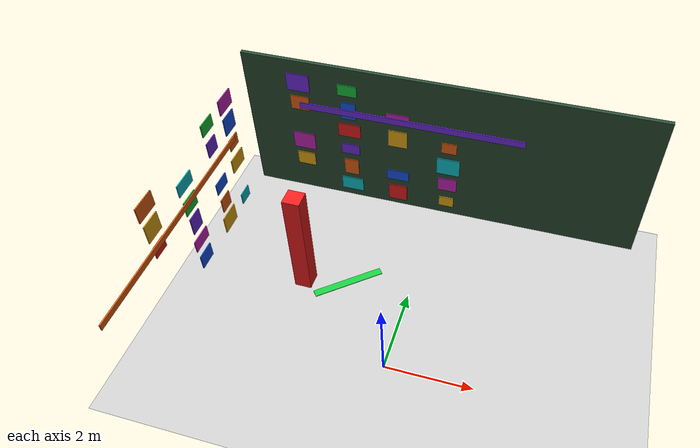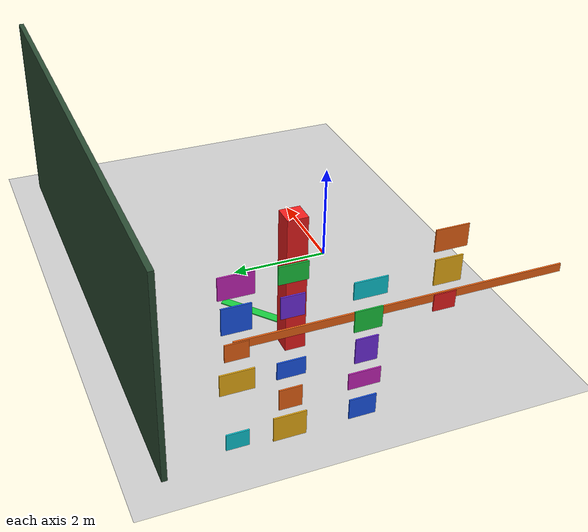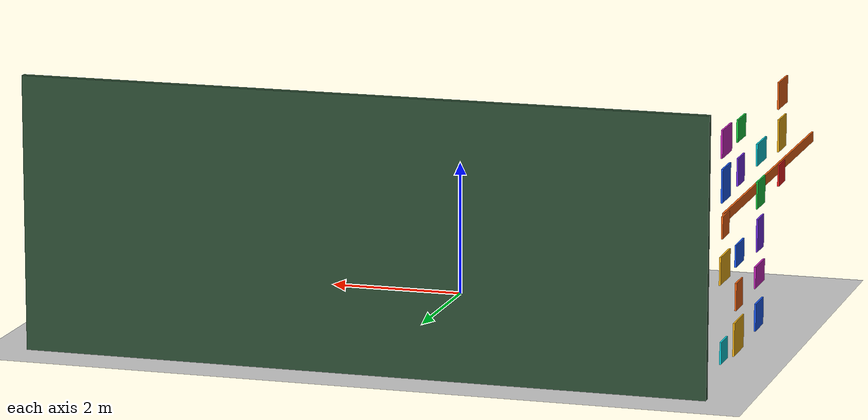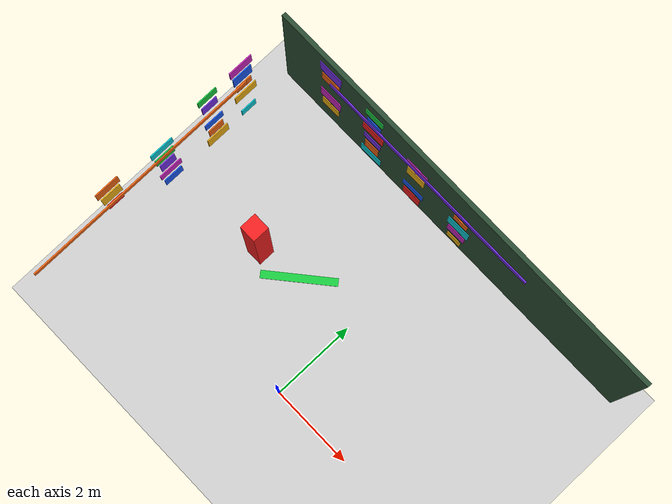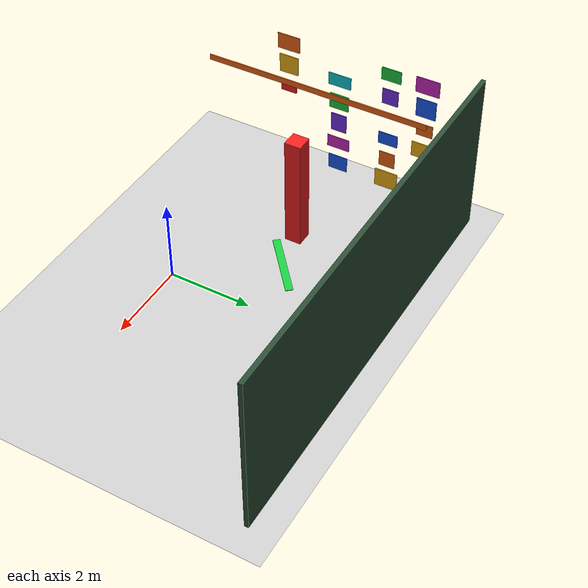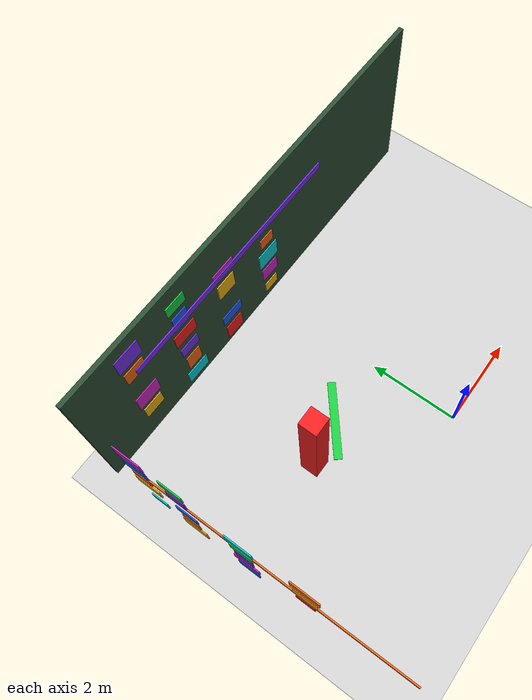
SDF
<sdf version="1.10">
 <world name="slam_room_office">
  <model name="ground_plane">
   <static>true</static>
   <link name="link">
    <collision name="collision">
     <geometry><plane><normal>0 0 1</normal><size>1 1</size></plane></geometry>
    </collision>
    <visual name="visual">
     <geometry><plane><normal>0 0 1</normal><size>500 500</size></plane></geometry>
     <material>
      <ambient>0.800000012 0.800000012 0.800000012 1</ambient>
      <diffuse>0.800000012 0.800000012 0.800000012 1</diffuse>
      <specular>0.800000012 0.800000012 0.800000012 1</specular>
     </material>
    </visual>
    <inertial>
     <mass>1</mass>
     <inertia><ixx>1</ixx><ixy>0</ixy><ixz>0</ixz><iyy>1</iyy><iyz>0</iyz><izz>1</izz></inertia>
    </inertial>
   </link>
  </model>
  <model name="slam_room_structure">
   <static>true</static>
   <link name="wall_y_pos">
    <pose>0 5 2 0 0 0</pose>
    <collision name="collision"><geometry><box><size>10 0.10000000000000001 4</size></box></geometry></collision>
    <visual name="visual">
     <geometry><box><size>10 0.10000000000000001 4</size></box></geometry>
     <material>
      <ambient>0.170000002 0.300000012 0.200000003 1</ambient>
      <diffuse>0.170000002 0.300000012 0.200000003 1</diffuse>
     </material>
    </visual>
    <inertial>
     <mass>1</mass>
     <inertia><ixx>1</ixx><ixy>0</ixy><ixz>0</ixz><iyy>1</iyy><iyz>0</iyz><izz>1</izz></inertia>
    </inertial>
   </link>
   <link name="xwall_panel_39">
    <pose>-4.9400000000000004 1.55 0.40000000000000002 0 0 0</pose>
    <visual name="visual">
     <geometry><box><size>0.025000000000000001 0.48999999999999999 0.40000000000000002</size></box></geometry>
     <material>
      <ambient>0.100000001 0.349999994 0.949999988 1</ambient>
      <diffuse>0.100000001 0.349999994 0.949999988 1</diffuse>
     </material>
    </visual>
    <inertial>
     <mass>1</mass>
     <inertia><ixx>1</ixx><ixy>0</ixy><ixz>0</ixz><iyy>1</iyy><iyz>0</iyz><izz>1</izz></inertia>
    </inertial>
   </link>
   <link name="xwall_panel_40">
    <pose>-4.9400000000000004 2.8500000000000001 0.40000000000000002 0 0 0</pose>
    <visual name="visual">
     <geometry><box><size>0.025000000000000001 0.57999999999999996 0.47999999999999998</size></box></geometry>
     <material>
      <ambient>0.949999988 0.699999988 0.0799999982 1</ambient>
      <diffuse>0.949999988 0.699999988 0.0799999982 1</diffuse>
     </material>
    </visual>
    <inertial>
     <mass>1</mass>
     <inertia><ixx>1</ixx><ixy>0</ixy><ixz>0</ixz><iyy>1</iyy><iyz>0</iyz><izz>1</izz></inertia>
    </inertial>
   </link>
   <link name="xwall_panel_41">
    <pose>-4.9400000000000004 3.75 0.40000000000000002 0 0 0</pose>
    <visual name="visual">
     <geometry><box><size>0.025000000000000001 0.40000000000000002 0.32000000000000001</size></box></geometry>
     <material>
      <ambient>0.0500000007 0.800000012 0.850000024 1</ambient>
      <diffuse>0.0500000007 0.800000012 0.850000024 1</diffuse>
     </material>
    </visual>
    <inertial>
     <mass>1</mass>
     <inertia><ixx>1</ixx><ixy>0</ixy><ixz>0</ixz><iyy>1</iyy><iyz>0</iyz><izz>1</izz></inertia>
    </inertial>
   </link>
   <link name="xwall_panel_46">
    <pose>-4.9400000000000004 1.55 1 0 0 0</pose>
    <visual name="visual">
     <geometry><box><size>0.025000000000000001 0.57999999999999996 0.32000000000000001</size></box></geometry>
     <material>
      <ambient>0.800000012 0.150000006 0.75 1</ambient>
      <diffuse>0.800000012 0.150000006 0.75 1</diffuse>
     </material>
    </visual>
    <inertial>
     <mass>1</mass>
     <inertia><ixx>1</ixx><ixy>0</ixy><ixz>0</ixz><iyy>1</iyy><iyz>0</iyz><izz>1</izz></inertia>
    </inertial>
   </link>
   <link name="xwall_panel_47">
    <pose>-4.9400000000000004 2.8500000000000001 1 0 0 0</pose>
    <visual name="visual">
     <geometry><box><size>0.025000000000000001 0.40000000000000002 0.40000000000000002</size></box></geometry>
     <material>
      <ambient>0.949999988 0.400000006 0.0799999982 1</ambient>
      <diffuse>0.949999988 0.400000006 0.0799999982 1</diffuse>
     </material>
    </visual>
    <inertial>
     <mass>1</mass>
     <inertia><ixx>1</ixx><ixy>0</ixy><ixz>0</ixz><iyy>1</iyy><iyz>0</iyz><izz>1</izz></inertia>
    </inertial>
   </link>
   <link name="xwall_panel_51">
    <pose>-4.9400000000000004 1.55 1.6000000000000001 0 0 0</pose>
    <visual name="visual">
     <geometry><box><size>0.025000000000000001 0.40000000000000002 0.47999999999999998</size></box></geometry>
     <material>
      <ambient>0.449999988 0.180000007 0.899999976 1</ambient>
      <diffuse>0.449999988 0.180000007 0.899999976 1</diffuse>
     </material>
    </visual>
    <inertial>
     <mass>1</mass>
     <inertia><ixx>1</ixx><ixy>0</ixy><ixz>0</ixz><iyy>1</iyy><iyz>0</iyz><izz>1</izz></inertia>
    </inertial>
   </link>
   <link name="xwall_panel_52">
    <pose>-4.9400000000000004 2.8500000000000001 1.6000000000000001 0 0 0</pose>
    <visual name="visual">
     <geometry><box><size>0.025000000000000001 0.48999999999999999 0.32000000000000001</size></box></geometry>
     <material>
      <ambient>0.100000001 0.349999994 0.949999988 1</ambient>
      <diffuse>0.100000001 0.349999994 0.949999988 1</diffuse>
     </material>
    </visual>
    <inertial>
     <mass>1</mass>
     <inertia><ixx>1</ixx><ixy>0</ixy><ixz>0</ixz><iyy>1</iyy><iyz>0</iyz><izz>1</izz></inertia>
    </inertial>
   </link>
   <link name="xwall_panel_53">
    <pose>-4.9400000000000004 3.75 1.6000000000000001 0 0 0</pose>
    <visual name="visual">
     <geometry><box><size>0.025000000000000001 0.57999999999999996 0.40000000000000002</size></box></geometry>
     <material>
      <ambient>0.949999988 0.699999988 0.0799999982 1</ambient>
      <diffuse>0.949999988 0.699999988 0.0799999982 1</diffuse>
     </material>
    </visual>
    <inertial>
     <mass>1</mass>
     <inertia><ixx>1</ixx><ixy>0</ixy><ixz>0</ixz><iyy>1</iyy><iyz>0</iyz><izz>1</izz></inertia>
    </inertial>
   </link>
   <link name="xwall_panel_57">
    <pose>-4.9400000000000004 0.20000000000000001 2.2000000000000002 0 0 0</pose>
    <visual name="visual">
     <geometry><box><size>0.025000000000000001 0.40000000000000002 0.32000000000000001</size></box></geometry>
     <material>
      <ambient>0.949999988 0.119999997 0.119999997 1</ambient>
      <diffuse>0.949999988 0.119999997 0.119999997 1</diffuse>
     </material>
    </visual>
    <inertial>
     <mass>1</mass>
     <inertia><ixx>1</ixx><ixy>0</ixy><ixz>0</ixz><iyy>1</iyy><iyz>0</iyz><izz>1</izz></inertia>
    </inertial>
   </link>
   <link name="xwall_panel_58">
    <pose>-4.9400000000000004 1.55 2.2000000000000002 0 0 0</pose>
    <visual name="visual">
     <geometry><box><size>0.025000000000000001 0.48999999999999999 0.40000000000000002</size></box></geometry>
     <material>
      <ambient>0.100000001 0.800000012 0.25 1</ambient>
      <diffuse>0.100000001 0.800000012 0.25 1</diffuse>
     </material>
    </visual>
    <inertial>
     <mass>1</mass>
     <inertia><ixx>1</ixx><ixy>0</ixy><ixz>0</ixz><iyy>1</iyy><iyz>0</iyz><izz>1</izz></inertia>
    </inertial>
   </link>
   <link name="xwall_panel_59">
    <pose>-4.9400000000000004 3.75 2.2000000000000002 0 0 0</pose>
    <visual name="visual">
     <geometry><box><size>0.025000000000000001 0.40000000000000002 0.32000000000000001</size></box></geometry>
     <material>
      <ambient>0.949999988 0.400000006 0.0799999982 1</ambient>
      <diffuse>0.949999988 0.400000006 0.0799999982 1</diffuse>
     </material>
    </visual>
    <inertial>
     <mass>1</mass>
     <inertia><ixx>1</ixx><ixy>0</ixy><ixz>0</ixz><iyy>1</iyy><iyz>0</iyz><izz>1</izz></inertia>
    </inertial>
   </link>
   <link name="xwall_panel_62">
    <pose>-4.9400000000000004 0.20000000000000001 2.7999999999999998 0 0 0</pose>
    <visual name="visual">
     <geometry><box><size>0.025000000000000001 0.48999999999999999 0.47999999999999998</size></box></geometry>
     <material>
      <ambient>0.949999988 0.699999988 0.0799999982 1</ambient>
      <diffuse>0.949999988 0.699999988 0.0799999982 1</diffuse>
     </material>
    </visual>
    <inertial>
     <mass>1</mass>
     <inertia><ixx>1</ixx><ixy>0</ixy><ixz>0</ixz><iyy>1</iyy><iyz>0</iyz><izz>1</izz></inertia>
    </inertial>
   </link>
   <link name="xwall_panel_63">
    <pose>-4.9400000000000004 1.55 2.7999999999999998 0 0 0</pose>
    <visual name="visual">
     <geometry><box><size>0.025000000000000001 0.57999999999999996 0.32000000000000001</size></box></geometry>
     <material>
      <ambient>0.0500000007 0.800000012 0.850000024 1</ambient>
      <diffuse>0.0500000007 0.800000012 0.850000024 1</diffuse>
     </material>
    </visual>
    <inertial>
     <mass>1</mass>
     <inertia><ixx>1</ixx><ixy>0</ixy><ixz>0</ixz><iyy>1</iyy><iyz>0</iyz><izz>1</izz></inertia>
    </inertial>
   </link>
   <link name="xwall_panel_64">
    <pose>-4.9400000000000004 2.8500000000000001 2.7999999999999998 0 0 0</pose>
    <visual name="visual">
     <geometry><box><size>0.025000000000000001 0.40000000000000002 0.40000000000000002</size></box></geometry>
     <material>
      <ambient>0.449999988 0.180000007 0.899999976 1</ambient>
      <diffuse>0.449999988 0.180000007 0.899999976 1</diffuse>
     </material>
    </visual>
    <inertial>
     <mass>1</mass>
     <inertia><ixx>1</ixx><ixy>0</ixy><ixz>0</ixz><iyy>1</iyy><iyz>0</iyz><izz>1</izz></inertia>
    </inertial>
   </link>
   <link name="xwall_panel_65">
    <pose>-4.9400000000000004 3.75 2.7999999999999998 0 0 0</pose>
    <visual name="visual">
     <geometry><box><size>0.025000000000000001 0.48999999999999999 0.47999999999999998</size></box></geometry>
     <material>
      <ambient>0.100000001 0.349999994 0.949999988 1</ambient>
      <diffuse>0.100000001 0.349999994 0.949999988 1</diffuse>
     </material>
    </visual>
    <inertial>
     <mass>1</mass>
     <inertia><ixx>1</ixx><ixy>0</ixy><ixz>0</ixz><iyy>1</iyy><iyz>0</iyz><izz>1</izz></inertia>
    </inertial>
   </link>
   <link name="xwall_panel_69">
    <pose>-4.9400000000000004 0.20000000000000001 3.3999999999999999 0 0 0</pose>
    <visual name="visual">
     <geometry><box><size>0.025000000000000001 0.57999999999999996 0.40000000000000002</size></box></geometry>
     <material>
      <ambient>0.949999988 0.400000006 0.0799999982 1</ambient>
      <diffuse>0.949999988 0.400000006 0.0799999982 1</diffuse>
     </material>
    </visual>
    <inertial>
     <mass>1</mass>
     <inertia><ixx>1</ixx><ixy>0</ixy><ixz>0</ixz><iyy>1</iyy><iyz>0</iyz><izz>1</izz></inertia>
    </inertial>
   </link>
   <link name="xwall_panel_70">
    <pose>-4.9400000000000004 2.8500000000000001 3.3999999999999999 0 0 0</pose>
    <visual name="visual">
     <geometry><box><size>0.025000000000000001 0.48999999999999999 0.32000000000000001</size></box></geometry>
     <material>
      <ambient>0.100000001 0.800000012 0.25 1</ambient>
      <diffuse>0.100000001 0.800000012 0.25 1</diffuse>
     </material>
    </visual>
    <inertial>
     <mass>1</mass>
     <inertia><ixx>1</ixx><ixy>0</ixy><ixz>0</ixz><iyy>1</iyy><iyz>0</iyz><izz>1</izz></inertia>
    </inertial>
   </link>
   <link name="xwall_panel_71">
    <pose>-4.9400000000000004 3.75 3.3999999999999999 0 0 0</pose>
    <visual name="visual">
     <geometry><box><size>0.025000000000000001 0.57999999999999996 0.40000000000000002</size></box></geometry>
     <material>
      <ambient>0.800000012 0.150000006 0.75 1</ambient>
      <diffuse>0.800000012 0.150000006 0.75 1</diffuse>
     </material>
    </visual>
    <inertial>
     <mass>1</mass>
     <inertia><ixx>1</ixx><ixy>0</ixy><ixz>0</ixz><iyy>1</iyy><iyz>0</iyz><izz>1</izz></inertia>
    </inertial>
   </link>
   <link name="ywall_panel_72">
    <pose>-2.3500000000000001 4.9400000000000004 0.40000000000000002 0 0 0</pose>
    <visual name="visual">
     <geometry><box><size>0.57999999999999996 0.025000000000000001 0.39000000000000001</size></box></geometry>
     <material>
      <ambient>0.0500000007 0.800000012 0.850000024 1</ambient>
      <diffuse>0.0500000007 0.800000012 0.850000024 1</diffuse>
     </material>
    </visual>
    <inertial>
     <mass>1</mass>
     <inertia><ixx>1</ixx><ixy>0</ixy><ixz>0</ixz><iyy>1</iyy><iyz>0</iyz><izz>1</izz></inertia>
    </inertial>
   </link>
   <link name="ywall_panel_73">
    <pose>-1.1000000000000001 4.9400000000000004 0.40000000000000002 0 0 0</pose>
    <visual name="visual">
     <geometry><box><size>0.47999999999999998 0.025000000000000001 0.47999999999999998</size></box></geometry>
     <material>
      <ambient>0.949999988 0.119999997 0.119999997 1</ambient>
      <diffuse>0.949999988 0.119999997 0.119999997 1</diffuse>
     </material>
    </visual>
    <inertial>
     <mass>1</mass>
     <inertia><ixx>1</ixx><ixy>0</ixy><ixz>0</ixz><iyy>1</iyy><iyz>0</iyz><izz>1</izz></inertia>
    </inertial>
   </link>
   <link name="ywall_panel_74">
    <pose>0.20000000000000001 4.9400000000000004 0.40000000000000002 0 0 0</pose>
    <visual name="visual">
     <geometry><box><size>0.38 0.025000000000000001 0.29999999999999999</size></box></geometry>
     <material>
      <ambient>0.949999988 0.699999988 0.0799999982 1</ambient>
      <diffuse>0.949999988 0.699999988 0.0799999982 1</diffuse>
     </material>
    </visual>
    <inertial>
     <mass>1</mass>
     <inertia><ixx>1</ixx><ixy>0</ixy><ixz>0</ixz><iyy>1</iyy><iyz>0</iyz><izz>1</izz></inertia>
    </inertial>
   </link>
   <link name="ywall_panel_77">
    <pose>-3.6000000000000001 4.9400000000000004 1 0 0 0</pose>
    <visual name="visual">
     <geometry><box><size>0.47999999999999998 0.025000000000000001 0.39000000000000001</size></box></geometry>
     <material>
      <ambient>0.949999988 0.699999988 0.0799999982 1</ambient>
      <diffuse>0.949999988 0.699999988 0.0799999982 1</diffuse>
     </material>
    </visual>
    <inertial>
     <mass>1</mass>
     <inertia><ixx>1</ixx><ixy>0</ixy><ixz>0</ixz><iyy>1</iyy><iyz>0</iyz><izz>1</izz></inertia>
    </inertial>
   </link>
   <link name="ywall_panel_78">
    <pose>-2.3500000000000001 4.9400000000000004 1 0 0 0</pose>
    <visual name="visual">
     <geometry><box><size>0.38 0.025000000000000001 0.47999999999999998</size></box></geometry>
     <material>
      <ambient>0.949999988 0.400000006 0.0799999982 1</ambient>
      <diffuse>0.949999988 0.400000006 0.0799999982 1</diffuse>
     </material>
    </visual>
    <inertial>
     <mass>1</mass>
     <inertia><ixx>1</ixx><ixy>0</ixy><ixz>0</ixz><iyy>1</iyy><iyz>0</iyz><izz>1</izz></inertia>
    </inertial>
   </link>
   <link name="ywall_panel_79">
    <pose>-1.1000000000000001 4.9400000000000004 1 0 0 0</pose>
    <visual name="visual">
     <geometry><box><size>0.57999999999999996 0.025000000000000001 0.29999999999999999</size></box></geometry>
     <material>
      <ambient>0.100000001 0.349999994 0.949999988 1</ambient>
      <diffuse>0.100000001 0.349999994 0.949999988 1</diffuse>
     </material>
    </visual>
    <inertial>
     <mass>1</mass>
     <inertia><ixx>1</ixx><ixy>0</ixy><ixz>0</ixz><iyy>1</iyy><iyz>0</iyz><izz>1</izz></inertia>
    </inertial>
   </link>
   <link name="ywall_panel_80">
    <pose>0.20000000000000001 4.9400000000000004 1 0 0 0</pose>
    <visual name="visual">
     <geometry><box><size>0.47999999999999998 0.025000000000000001 0.39000000000000001</size></box></geometry>
     <material>
      <ambient>0.800000012 0.150000006 0.75 1</ambient>
      <diffuse>0.800000012 0.150000006 0.75 1</diffuse>
     </material>
    </visual>
    <inertial>
     <mass>1</mass>
     <inertia><ixx>1</ixx><ixy>0</ixy><ixz>0</ixz><iyy>1</iyy><iyz>0</iyz><izz>1</izz></inertia>
    </inertial>
   </link>
   <link name="ywall_panel_83">
    <pose>-3.6000000000000001 4.9400000000000004 1.6000000000000001 0 0 0</pose>
    <visual name="visual">
     <geometry><box><size>0.57999999999999996 0.025000000000000001 0.47999999999999998</size></box></geometry>
     <material>
      <ambient>0.800000012 0.150000006 0.75 1</ambient>
      <diffuse>0.800000012 0.150000006 0.75 1</diffuse>
     </material>
    </visual>
    <inertial>
     <mass>1</mass>
     <inertia><ixx>1</ixx><ixy>0</ixy><ixz>0</ixz><iyy>1</iyy><iyz>0</iyz><izz>1</izz></inertia>
    </inertial>
   </link>
   <link name="ywall_panel_84">
    <pose>-2.3500000000000001 4.9400000000000004 1.6000000000000001 0 0 0</pose>
    <visual name="visual">
     <geometry><box><size>0.47999999999999998 0.025000000000000001 0.29999999999999999</size></box></geometry>
     <material>
      <ambient>0.449999988 0.180000007 0.899999976 1</ambient>
      <diffuse>0.449999988 0.180000007 0.899999976 1</diffuse>
     </material>
    </visual>
    <inertial>
     <mass>1</mass>
     <inertia><ixx>1</ixx><ixy>0</ixy><ixz>0</ixz><iyy>1</iyy><iyz>0</iyz><izz>1</izz></inertia>
    </inertial>
   </link>
   <link name="ywall_panel_85">
    <pose>0.20000000000000001 4.9400000000000004 1.6000000000000001 0 0 0</pose>
    <visual name="visual">
     <geometry><box><size>0.57999999999999996 0.025000000000000001 0.47999999999999998</size></box></geometry>
     <material>
      <ambient>0.0500000007 0.800000012 0.850000024 1</ambient>
      <diffuse>0.0500000007 0.800000012 0.850000024 1</diffuse>
     </material>
    </visual>
    <inertial>
     <mass>1</mass>
     <inertia><ixx>1</ixx><ixy>0</ixy><ixz>0</ixz><iyy>1</iyy><iyz>0</iyz><izz>1</izz></inertia>
    </inertial>
   </link>
   <link name="ywall_panel_89">
    <pose>-2.3500000000000001 4.9400000000000004 2.2000000000000002 0 0 0</pose>
    <visual name="visual">
     <geometry><box><size>0.57999999999999996 0.025000000000000001 0.39000000000000001</size></box></geometry>
     <material>
      <ambient>0.949999988 0.119999997 0.119999997 1</ambient>
      <diffuse>0.949999988 0.119999997 0.119999997 1</diffuse>
     </material>
    </visual>
    <inertial>
     <mass>1</mass>
     <inertia><ixx>1</ixx><ixy>0</ixy><ixz>0</ixz><iyy>1</iyy><iyz>0</iyz><izz>1</izz></inertia>
    </inertial>
   </link>
   <link name="ywall_panel_90">
    <pose>-1.1000000000000001 4.9400000000000004 2.2000000000000002 0 0 0</pose>
    <visual name="visual">
     <geometry><box><size>0.47999999999999998 0.025000000000000001 0.47999999999999998</size></box></geometry>
     <material>
      <ambient>0.949999988 0.699999988 0.0799999982 1</ambient>
      <diffuse>0.949999988 0.699999988 0.0799999982 1</diffuse>
     </material>
    </visual>
    <inertial>
     <mass>1</mass>
     <inertia><ixx>1</ixx><ixy>0</ixy><ixz>0</ixz><iyy>1</iyy><iyz>0</iyz><izz>1</izz></inertia>
    </inertial>
   </link>
   <link name="ywall_panel_91">
    <pose>0.20000000000000001 4.9400000000000004 2.2000000000000002 0 0 0</pose>
    <visual name="visual">
     <geometry><box><size>0.38 0.025000000000000001 0.29999999999999999</size></box></geometry>
     <material>
      <ambient>0.949999988 0.400000006 0.0799999982 1</ambient>
      <diffuse>0.949999988 0.400000006 0.0799999982 1</diffuse>
     </material>
    </visual>
    <inertial>
     <mass>1</mass>
     <inertia><ixx>1</ixx><ixy>0</ixy><ixz>0</ixz><iyy>1</iyy><iyz>0</iyz><izz>1</izz></inertia>
    </inertial>
   </link>
   <link name="ywall_panel_94">
    <pose>-3.6000000000000001 4.9400000000000004 2.7999999999999998 0 0 0</pose>
    <visual name="visual">
     <geometry><box><size>0.47999999999999998 0.025000000000000001 0.39000000000000001</size></box></geometry>
     <material>
      <ambient>0.949999988 0.400000006 0.0799999982 1</ambient>
      <diffuse>0.949999988 0.400000006 0.0799999982 1</diffuse>
     </material>
    </visual>
    <inertial>
     <mass>1</mass>
     <inertia><ixx>1</ixx><ixy>0</ixy><ixz>0</ixz><iyy>1</iyy><iyz>0</iyz><izz>1</izz></inertia>
    </inertial>
   </link>
   <link name="ywall_panel_95">
    <pose>-2.3500000000000001 4.9400000000000004 2.7999999999999998 0 0 0</pose>
    <visual name="visual">
     <geometry><box><size>0.38 0.025000000000000001 0.47999999999999998</size></box></geometry>
     <material>
      <ambient>0.100000001 0.349999994 0.949999988 1</ambient>
      <diffuse>0.100000001 0.349999994 0.949999988 1</diffuse>
     </material>
    </visual>
    <inertial>
     <mass>1</mass>
     <inertia><ixx>1</ixx><ixy>0</ixy><ixz>0</ixz><iyy>1</iyy><iyz>0</iyz><izz>1</izz></inertia>
    </inertial>
   </link>
   <link name="ywall_panel_96">
    <pose>-1.1000000000000001 4.9400000000000004 2.7999999999999998 0 0 0</pose>
    <visual name="visual">
     <geometry><box><size>0.57999999999999996 0.025000000000000001 0.29999999999999999</size></box></geometry>
     <material>
      <ambient>0.800000012 0.150000006 0.75 1</ambient>
      <diffuse>0.800000012 0.150000006 0.75 1</diffuse>
     </material>
    </visual>
    <inertial>
     <mass>1</mass>
     <inertia><ixx>1</ixx><ixy>0</ixy><ixz>0</ixz><iyy>1</iyy><iyz>0</iyz><izz>1</izz></inertia>
    </inertial>
   </link>
   <link name="ywall_panel_100">
    <pose>-3.6000000000000001 4.9400000000000004 3.3999999999999999 0 0 0</pose>
    <visual name="visual">
     <geometry><box><size>0.57999999999999996 0.025000000000000001 0.47999999999999998</size></box></geometry>
     <material>
      <ambient>0.449999988 0.180000007 0.899999976 1</ambient>
      <diffuse>0.449999988 0.180000007 0.899999976 1</diffuse>
     </material>
    </visual>
    <inertial>
     <mass>1</mass>
     <inertia><ixx>1</ixx><ixy>0</ixy><ixz>0</ixz><iyy>1</iyy><iyz>0</iyz><izz>1</izz></inertia>
    </inertial>
   </link>
   <link name="ywall_panel_101">
    <pose>-2.3500000000000001 4.9400000000000004 3.3999999999999999 0 0 0</pose>
    <visual name="visual">
     <geometry><box><size>0.47999999999999998 0.025000000000000001 0.29999999999999999</size></box></geometry>
     <material>
      <ambient>0.100000001 0.800000012 0.25 1</ambient>
      <diffuse>0.100000001 0.800000012 0.25 1</diffuse>
     </material>
    </visual>
    <inertial>
     <mass>1</mass>
     <inertia><ixx>1</ixx><ixy>0</ixy><ixz>0</ixz><iyy>1</iyy><iyz>0</iyz><izz>1</izz></inertia>
    </inertial>
   </link>
   <link name="stripe_xn_2">
    <pose>-4.9199999999999999 0.90000000000000002 2.2999999999999998 0 0 0</pose>
    <visual name="visual">
     <geometry><box><size>0.029999999999999999 5.7999999999999998 0.14999999999999999</size></box></geometry>
     <material>
      <ambient>0.949999988 0.400000006 0.0799999982 1</ambient>
      <diffuse>0.949999988 0.400000006 0.0799999982 1</diffuse>
     </material>
    </visual>
    <inertial>
     <mass>1</mass>
     <inertia><ixx>1</ixx><ixy>0</ixy><ixz>0</ixz><iyy>1</iyy><iyz>0</iyz><izz>1</izz></inertia>
    </inertial>
   </link>
   <link name="stripe_yp_2">
    <pose>-0.80000000000000004 4.9199999999999999 2.75 0 0 0</pose>
    <visual name="visual">
     <geometry><box><size>5.5999999999999996 0.029999999999999999 0.17000000000000001</size></box></geometry>
     <material>
      <ambient>0.449999988 0.180000007 0.899999976 1</ambient>
      <diffuse>0.449999988 0.180000007 0.899999976 1</diffuse>
     </material>
    </visual>
    <inertial>
     <mass>1</mass>
     <inertia><ixx>1</ixx><ixy>0</ixy><ixz>0</ixz><iyy>1</iyy><iyz>0</iyz><izz>1</izz></inertia>
    </inertial>
   </link>
   <link name="floor_3">
    <pose>-1.5 2 0.012 0 0 0.69999999999999973</pose>
    <visual name="visual">
     <geometry><box><size>1.7 0.17999999999999999 0.02</size></box></geometry>
     <material>
      <ambient>0.100000001 0.800000012 0.25 1</ambient>
      <diffuse>0.100000001 0.800000012 0.25 1</diffuse>
     </material>
    </visual>
    <inertial>
     <mass>1</mass>
     <inertia><ixx>1</ixx><ixy>0</ixy><ixz>0</ixz><iyy>1</iyy><iyz>0</iyz><izz>1</izz></inertia>
    </inertial>
   </link>
   <link name="pillar_c">
    <pose>-2.5 1.8 1.3999999999999999 0 0 0</pose>
    <collision name="collision">
     <geometry><box><size>0.40000000000000002 0.40000000000000002 2.7999999999999998</size></box></geometry>
    </collision>
    <visual name="visual">
     <geometry><box><size>0.40000000000000002 0.40000000000000002 2.7999999999999998</size></box></geometry>
     <material>
      <ambient>0.949999988 0.119999997 0.119999997 1</ambient>
      <diffuse>0.949999988 0.119999997 0.119999997 1</diffuse>
     </material>
    </visual>
    <inertial>
     <mass>1</mass>
     <inertia><ixx>1</ixx><ixy>0</ixy><ixz>0</ixz><iyy>1</iyy><iyz>0</iyz><izz>1</izz></inertia>
    </inertial>
   </link>
  </model>
 </world>
</sdf>
